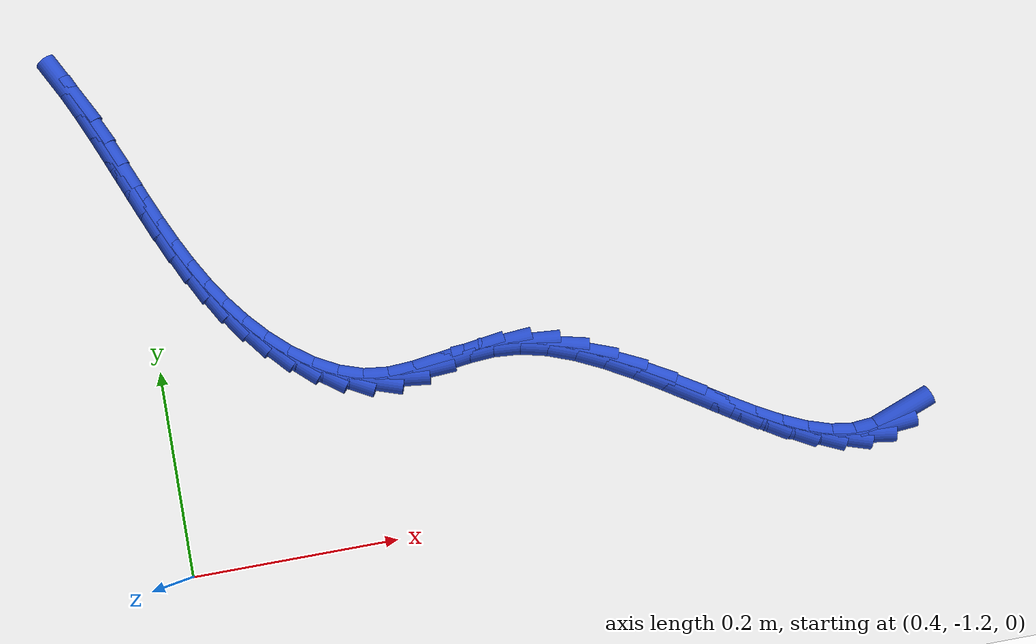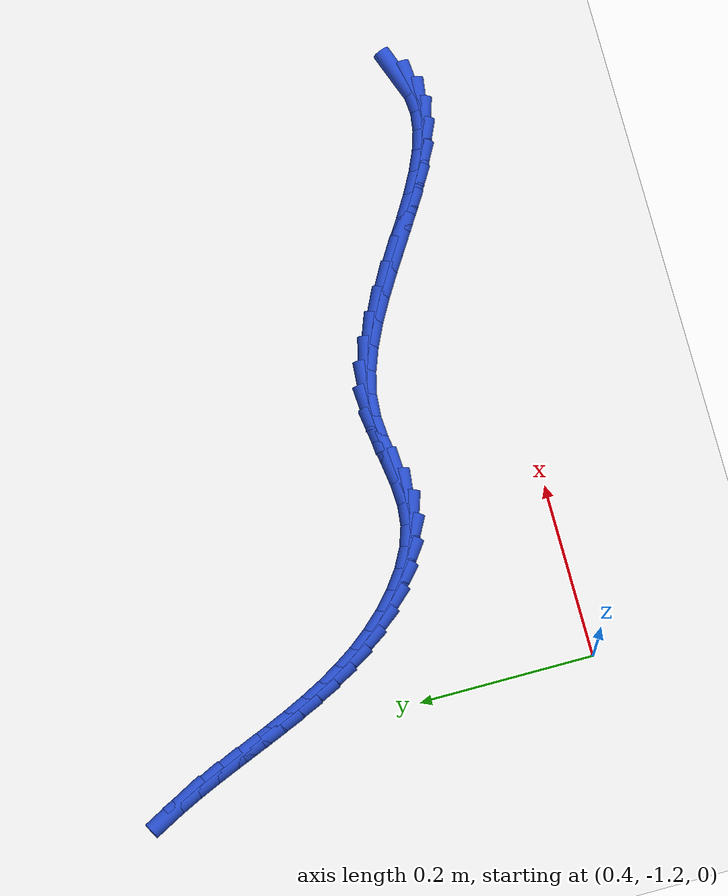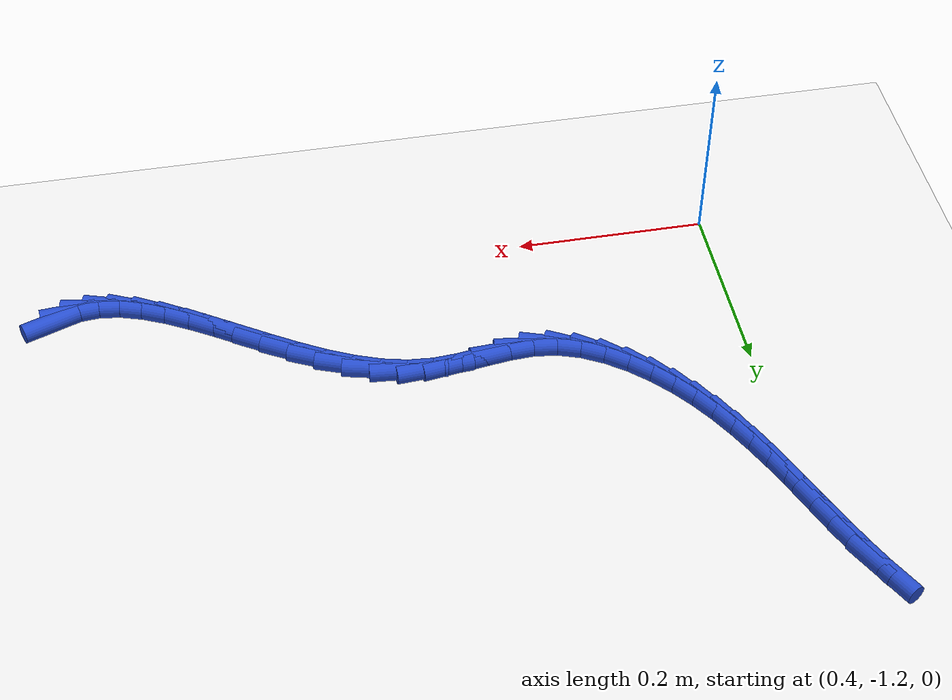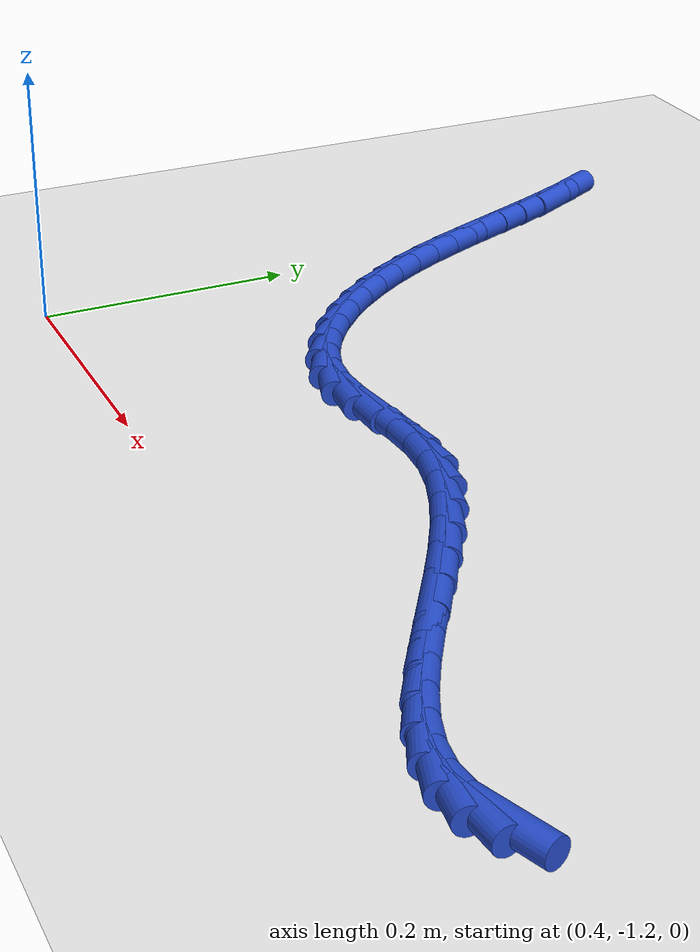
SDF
<sdf version="1.6">
 <world name="default">
  <model name="ground_plane">
   <static>1</static>
   <link name="link">
    <collision name="collision">
     <geometry><plane><normal>0 0 1</normal><size>100 100</size></plane></geometry>
     <surface><friction><ode><mu>100</mu><mu2>50</mu2></ode></friction></surface>
    </collision>
    <visual name="visual">
     <cast_shadows>0</cast_shadows>
     <geometry><plane><normal>0 0 1</normal><size>100 100</size></plane></geometry>
     <material>
      <script><uri>file://media/materials/scripts/gazebo.material</uri><name>Gazebo/WhiteGlow</name></script>
     </material>
    </visual>
   </link>
  </model>
  <model name="line">
   <link name="link_222">
    <pose>1.093503486780314 -1.1689613778271895 0.01 0 1.57 0.3533692593800649</pose>
    <collision name="collision">
     <geometry><cylinder><radius>0.01</radius><length>0.08</length></cylinder></geometry>
    </collision>
    <visual name="visual">
     <material>
      <script><name>Gazebo/Blue</name><uri>file://media/materials/scripts/gazebo.material</uri></script>
     </material>
     <geometry><cylinder><radius>0.01</radius><length>0.08</length></cylinder></geometry>
    </visual>
   </link>
   <link name="link_223">
    <pose>1.073049364685974 -1.1765059096031265 0.01 0 1.57 0.08449081167235765</pose>
    <collision name="collision">
     <geometry><cylinder><radius>0.01</radius><length>0.08</length></cylinder></geometry>
    </collision>
    <visual name="visual">
     <material>
      <script><name>Gazebo/Blue</name><uri>file://media/materials/scripts/gazebo.material</uri></script>
     </material>
     <geometry><cylinder><radius>0.01</radius><length>0.08</length></cylinder></geometry>
    </visual>
   </link>
   <link name="link_224">
    <pose>1.0516490963067209 -1.1783183505247665 0.01 0 1.57 -0.14020226964140325</pose>
    <collision name="collision">
     <geometry><cylinder><radius>0.01</radius><length>0.08</length></cylinder></geometry>
    </collision>
    <visual name="visual">
     <material>
      <script><name>Gazebo/Blue</name><uri>file://media/materials/scripts/gazebo.material</uri></script>
     </material>
     <geometry><cylinder><radius>0.01</radius><length>0.08</length></cylinder></geometry>
    </visual>
   </link>
   <link name="link_225">
    <pose>1.0293810906578573 -1.1751757072507096 0.01 0 1.57 -0.30743420362168145</pose>
    <collision name="collision">
     <geometry><cylinder><radius>0.01</radius><length>0.08</length></cylinder></geometry>
    </collision>
    <visual name="visual">
     <material>
      <script><name>Gazebo/Blue</name><uri>file://media/materials/scripts/gazebo.material</uri></script>
     </material>
     <geometry><cylinder><radius>0.01</radius><length>0.08</length></cylinder></geometry>
    </visual>
   </link>
   <link name="link_226">
    <pose>1.006323756754685 -1.1678549864395549 0.01 0 1.57 -0.4237659575485001</pose>
    <collision name="collision">
     <geometry><cylinder><radius>0.01</radius><length>0.08</length></cylinder></geometry>
    </collision>
    <visual name="visual">
     <material>
      <script><name>Gazebo/Blue</name><uri>file://media/materials/scripts/gazebo.material</uri></script>
     </material>
     <geometry><cylinder><radius>0.01</radius><length>0.08</length></cylinder></geometry>
    </visual>
   </link>
   <link name="link_227">
    <pose>0.9825555036125054 -1.1571331947499015 0.01 0 1.57 -0.5004940775723002</pose>
    <collision name="collision">
     <geometry><cylinder><radius>0.01</radius><length>0.08</length></cylinder></geometry>
    </collision>
    <visual name="visual">
     <material>
      <script><name>Gazebo/Blue</name><uri>file://media/materials/scripts/gazebo.material</uri></script>
     </material>
     <geometry><cylinder><radius>0.01</radius><length>0.08</length></cylinder></geometry>
    </visual>
   </link>
   <link name="link_228">
    <pose>0.9581547402466214 -1.1437873388403494 0.01 0 1.57 -0.5468764334390049</pose>
    <collision name="collision">
     <geometry><cylinder><radius>0.01</radius><length>0.08</length></cylinder></geometry>
    </collision>
    <visual name="visual">
     <material>
      <script><name>Gazebo/Blue</name><uri>file://media/materials/scripts/gazebo.material</uri></script>
     </material>
     <geometry><cylinder><radius>0.01</radius><length>0.08</length></cylinder></geometry>
    </visual>
   </link>
   <link name="link_229">
    <pose>0.9331998756723345 -1.1285944253694977 0.01 0 1.57 -0.5689618417782218</pose>
    <collision name="collision">
     <geometry><cylinder><radius>0.01</radius><length>0.08</length></cylinder></geometry>
    </collision>
    <visual name="visual">
     <material>
      <script><name>Gazebo/Blue</name><uri>file://media/materials/scripts/gazebo.material</uri></script>
     </material>
     <geometry><cylinder><radius>0.01</radius><length>0.08</length></cylinder></geometry>
    </visual>
   </link>
   <link name="link_230">
    <pose>0.9077693189049464 -1.1123314609959456 0.01 0 1.57 -0.57003225749628</pose>
    <collision name="collision">
     <geometry><cylinder><radius>0.01</radius><length>0.08</length></cylinder></geometry>
    </collision>
    <visual name="visual">
     <material>
      <script><name>Gazebo/Blue</name><uri>file://media/materials/scripts/gazebo.material</uri></script>
     </material>
     <geometry><cylinder><radius>0.01</radius><length>0.08</length></cylinder></geometry>
    </visual>
   </link>
   <link name="link_231">
    <pose>0.8819414789597599 -1.095775452378293 0.01 0 1.57 -0.5511488555832696</pose>
    <collision name="collision">
     <geometry><cylinder><radius>0.01</radius><length>0.08</length></cylinder></geometry>
    </collision>
    <visual name="visual">
     <material>
      <script><name>Gazebo/Blue</name><uri>file://media/materials/scripts/gazebo.material</uri></script>
     </material>
     <geometry><cylinder><radius>0.01</radius><length>0.08</length></cylinder></geometry>
    </visual>
   </link>
   <link name="link_232">
    <pose>0.8557947648520762 -1.0797034061751387 0.01 0 1.57 -0.5114760777028816</pose>
    <collision name="collision">
     <geometry><cylinder><radius>0.01</radius><length>0.08</length></cylinder></geometry>
    </collision>
    <visual name="visual">
     <material>
      <script><name>Gazebo/Blue</name><uri>file://media/materials/scripts/gazebo.material</uri></script>
     </material>
     <geometry><cylinder><radius>0.01</radius><length>0.08</length></cylinder></geometry>
    </visual>
   </link>
   <link name="link_233">
    <pose>0.8294075855971985 -1.0648923290450834 0.01 0 1.57 -0.44842169218633615</pose>
    <collision name="collision">
     <geometry><cylinder><radius>0.01</radius><length>0.08</length></cylinder></geometry>
    </collision>
    <visual name="visual">
     <material>
      <script><name>Gazebo/Blue</name><uri>file://media/materials/scripts/gazebo.material</uri></script>
     </material>
     <geometry><cylinder><radius>0.01</radius><length>0.08</length></cylinder></geometry>
    </visual>
   </link>
   <link name="link_234">
    <pose>0.802858350210427 -1.0521192276467244 0.01 0 1.57 -0.3578087131692635</pose>
    <collision name="collision">
     <geometry><cylinder><radius>0.01</radius><length>0.08</length></cylinder></geometry>
    </collision>
    <visual name="visual">
     <material>
      <script><name>Gazebo/Blue</name><uri>file://media/materials/scripts/gazebo.material</uri></script>
     </material>
     <geometry><cylinder><radius>0.01</radius><length>0.08</length></cylinder></geometry>
    </visual>
   </link>
   <link name="link_235">
    <pose>0.7762254677070644 -1.0421611086386622 0.01 0 1.57 -0.2345857040918105</pose>
    <collision name="collision">
     <geometry><cylinder><radius>0.01</radius><length>0.08</length></cylinder></geometry>
    </collision>
    <visual name="visual">
     <material>
      <script><name>Gazebo/Blue</name><uri>file://media/materials/scripts/gazebo.material</uri></script>
     </material>
     <geometry><cylinder><radius>0.01</radius><length>0.08</length></cylinder></geometry>
    </visual>
   </link>
   <link name="link_236">
    <pose>0.7495873471024128 -1.0357949786794964 0.01 0 1.57 -0.07629907367381815</pose>
    <collision name="collision">
     <geometry><cylinder><radius>0.01</radius><length>0.08</length></cylinder></geometry>
    </collision>
    <visual name="visual">
     <material>
      <script><name>Gazebo/Blue</name><uri>file://media/materials/scripts/gazebo.material</uri></script>
     </material>
     <geometry><cylinder><radius>0.01</radius><length>0.08</length></cylinder></geometry>
    </visual>
   </link>
   <link name="link_237">
    <pose>0.7230225370256854 -1.033764165922943 0.01 0 1.57 0.06964563453782</pose>
    <collision name="collision">
     <geometry><cylinder><radius>0.01</radius><length>0.08</length></cylinder></geometry>
    </collision>
    <visual name="visual">
     <material>
      <script><name>Gazebo/Blue</name><uri>file://media/materials/scripts/gazebo.material</uri></script>
     </material>
     <geometry><cylinder><radius>0.01</radius><length>0.08</length></cylinder></geometry>
    </visual>
   </link>
   <link name="link_238">
    <pose>0.6966145841349562 -1.0356063440262717 0.01 0 1.57 0.14215010283932777</pose>
    <collision name="collision">
     <geometry><cylinder><radius>0.01</radius><length>0.08</length></cylinder></geometry>
    </collision>
    <visual name="visual">
     <material>
      <script><name>Gazebo/Blue</name><uri>file://media/materials/scripts/gazebo.material</uri></script>
     </material>
     <geometry><cylinder><radius>0.01</radius><length>0.08</length></cylinder></geometry>
    </visual>
   </link>
   <link name="link_239">
    <pose>0.6704532896356323 -1.0393504272291 0.01 0 1.57 0.1377369634541507</pose>
    <collision name="collision">
     <geometry><cylinder><radius>0.01</radius><length>0.08</length></cylinder></geometry>
    </collision>
    <visual name="visual">
     <material>
      <script><name>Gazebo/Blue</name><uri>file://media/materials/scripts/gazebo.material</uri></script>
     </material>
     <geometry><cylinder><radius>0.01</radius><length>0.08</length></cylinder></geometry>
    </visual>
   </link>
   <link name="link_240">
    <pose>0.6446288496195001 -1.0429300729103934 0.01 0 1.57 0.05306054895958059</pose>
    <collision name="collision">
     <geometry><cylinder><radius>0.01</radius><length>0.08</length></cylinder></geometry>
    </collision>
    <visual name="visual">
     <material>
      <script><name>Gazebo/Blue</name><uri>file://media/materials/scripts/gazebo.material</uri></script>
     </material>
     <geometry><cylinder><radius>0.01</radius><length>0.08</length></cylinder></geometry>
    </visual>
   </link>
   <link name="link_241">
    <pose>0.6192314601783457 -1.044278938449116 0.01 0 1.57 -0.11719943928644568</pose>
    <collision name="collision">
     <geometry><cylinder><radius>0.01</radius><length>0.08</length></cylinder></geometry>
    </collision>
    <visual name="visual">
     <material>
      <script><name>Gazebo/Blue</name><uri>file://media/materials/scripts/gazebo.material</uri></script>
     </material>
     <geometry><cylinder><radius>0.01</radius><length>0.08</length></cylinder></geometry>
    </visual>
   </link>
   <link name="link_242">
    <pose>0.594352910328059 -1.0413497626241173 0.01 0 1.57 -0.3240312958091591</pose>
    <collision name="collision">
     <geometry><cylinder><radius>0.01</radius><length>0.08</length></cylinder></geometry>
    </collision>
    <visual name="visual">
     <material>
      <script><name>Gazebo/Blue</name><uri>file://media/materials/scripts/gazebo.material</uri></script>
     </material>
     <geometry><cylinder><radius>0.01</radius><length>0.08</length></cylinder></geometry>
    </visual>
   </link>
   <link name="link_243">
    <pose>0.5701797780125327 -1.0332307466233601 0.01 0 1.57 -0.4942414768002334</pose>
    <collision name="collision">
     <geometry><cylinder><radius>0.01</radius><length>0.08</length></cylinder></geometry>
    </collision>
    <visual name="visual">
     <material>
      <script><name>Gazebo/Blue</name><uri>file://media/materials/scripts/gazebo.material</uri></script>
     </material>
     <geometry><cylinder><radius>0.01</radius><length>0.08</length></cylinder></geometry>
    </visual>
   </link>
   <link name="link_244">
    <pose>0.5470451135418033 -1.0207646622290227 0.01 0 1.57 -0.6288402374956258</pose>
    <collision name="collision">
     <geometry><cylinder><radius>0.01</radius><length>0.08</length></cylinder></geometry>
    </collision>
    <visual name="visual">
     <material>
      <script><name>Gazebo/Blue</name><uri>file://media/materials/scripts/gazebo.material</uri></script>
     </material>
     <geometry><cylinder><radius>0.01</radius><length>0.08</length></cylinder></geometry>
    </visual>
   </link>
   <link name="link_245">
    <pose>0.5252945144961545 -1.0049445830992696 0.01 0 1.57 -0.7372719352020206</pose>
    <collision name="collision">
     <geometry><cylinder><radius>0.01</radius><length>0.08</length></cylinder></geometry>
    </collision>
    <visual name="visual">
     <material>
      <script><name>Gazebo/Blue</name><uri>file://media/materials/scripts/gazebo.material</uri></script>
     </material>
     <geometry><cylinder><radius>0.01</radius><length>0.08</length></cylinder></geometry>
    </visual>
   </link>
   <link name="link_246">
    <pose>0.5052735784558705 -0.9867635828922671 0.01 0 1.57 -0.8287221676463495</pose>
    <collision name="collision">
     <geometry><cylinder><radius>0.01</radius><length>0.08</length></cylinder></geometry>
    </collision>
    <visual name="visual">
     <material>
      <script><name>Gazebo/Blue</name><uri>file://media/materials/scripts/gazebo.material</uri></script>
     </material>
     <geometry><cylinder><radius>0.01</radius><length>0.08</length></cylinder></geometry>
    </visual>
   </link>
   <link name="link_247">
    <pose>0.4872520715587783 -0.9671087647076183 0.01 0 1.57 -0.9105103411282524</pose>
    <collision name="collision">
     <geometry><cylinder><radius>0.01</radius><length>0.08</length></cylinder></geometry>
    </collision>
    <visual name="visual">
     <material>
      <script><name>Gazebo/Blue</name><uri>file://media/materials/scripts/gazebo.material</uri></script>
     </material>
     <geometry><cylinder><radius>0.01</radius><length>0.08</length></cylinder></geometry>
    </visual>
   </link>
   <link name="link_248">
    <pose>0.47110682807341586 -0.9463181294741558 0.01 0 1.57 -0.9825227879142401</pose>
    <collision name="collision">
     <geometry><cylinder><radius>0.01</radius><length>0.08</length></cylinder></geometry>
    </collision>
    <visual name="visual">
     <material>
      <script><name>Gazebo/Blue</name><uri>file://media/materials/scripts/gazebo.material</uri></script>
     </material>
     <geometry><cylinder><radius>0.01</radius><length>0.08</length></cylinder></geometry>
    </visual>
   </link>
   <link name="link_249">
    <pose>0.45658779895048096 -0.9245523651799562 0.01 0 1.57 -1.0436777090136218</pose>
    <collision name="collision">
     <geometry><cylinder><radius>0.01</radius><length>0.08</length></cylinder></geometry>
    </collision>
    <visual name="visual">
     <material>
      <script><name>Gazebo/Blue</name><uri>file://media/materials/scripts/gazebo.material</uri></script>
     </material>
     <geometry><cylinder><radius>0.01</radius><length>0.08</length></cylinder></geometry>
    </visual>
   </link>
   <link name="link_250">
    <pose>0.4434448721865769 -0.9019720718379723 0.01 0 1.57 -1.0934769146845842</pose>
    <collision name="collision">
     <geometry><cylinder><radius>0.01</radius><length>0.08</length></cylinder></geometry>
    </collision>
    <visual name="visual">
     <material>
      <script><name>Gazebo/Blue</name><uri>file://media/materials/scripts/gazebo.material</uri></script>
     </material>
     <geometry><cylinder><radius>0.01</radius><length>0.08</length></cylinder></geometry>
    </visual>
   </link>
   <link name="link_251">
    <pose>0.43142793577830635 -0.8787378494611557 0.01 0 1.57 -1.1318114634620464</pose>
    <collision name="collision">
     <geometry><cylinder><radius>0.01</radius><length>0.08</length></cylinder></geometry>
    </collision>
    <visual name="visual">
     <material>
      <script><name>Gazebo/Blue</name><uri>file://media/materials/scripts/gazebo.material</uri></script>
     </material>
     <geometry><cylinder><radius>0.01</radius><length>0.08</length></cylinder></geometry>
    </visual>
   </link>
   <link name="link_252">
    <pose>0.4202868777222717 -0.8550102980624575 0.01 0 1.57 -1.1587725108783906</pose>
    <collision name="collision">
     <geometry><cylinder><radius>0.01</radius><length>0.08</length></cylinder></geometry>
    </collision>
    <visual name="visual">
     <material>
      <script><name>Gazebo/Blue</name><uri>file://media/materials/scripts/gazebo.material</uri></script>
     </material>
     <geometry><cylinder><radius>0.01</radius><length>0.08</length></cylinder></geometry>
    </visual>
   </link>
   <link name="link_253">
    <pose>0.40977158601507585 -0.8309500176548296 0.01 0 1.57 -1.1745011943922123</pose>
    <collision name="collision">
     <geometry><cylinder><radius>0.01</radius><length>0.08</length></cylinder></geometry>
    </collision>
    <visual name="visual">
     <material>
      <script><name>Gazebo/Blue</name><uri>file://media/materials/scripts/gazebo.material</uri></script>
     </material>
     <geometry><cylinder><radius>0.01</radius><length>0.08</length></cylinder></geometry>
    </visual>
   </link>
   <link name="link_254">
    <pose>0.3996319486533212 -0.8067176082512235 0.01 0 1.57 -1.1790860145692148</pose>
    <collision name="collision">
     <geometry><cylinder><radius>0.01</radius><length>0.08</length></cylinder></geometry>
    </collision>
    <visual name="visual">
     <material>
      <script><name>Gazebo/Blue</name><uri>file://media/materials/scripts/gazebo.material</uri></script>
     </material>
     <geometry><cylinder><radius>0.01</radius><length>0.08</length></cylinder></geometry>
    </visual>
   </link>
   <link name="link_255">
    <pose>0.3896178536336105 -0.7824736698645909 0.01 0 1.57 -1.1725045495084934</pose>
    <collision name="collision">
     <geometry><cylinder><radius>0.01</radius><length>0.08</length></cylinder></geometry>
    </collision>
    <visual name="visual">
     <material>
      <script><name>Gazebo/Blue</name><uri>file://media/materials/scripts/gazebo.material</uri></script>
     </material>
     <geometry><cylinder><radius>0.01</radius><length>0.08</length></cylinder></geometry>
    </visual>
   </link>
   <link name="link_256">
    <pose>0.3794791889525464 -0.7583788025078833 0.01 0 1.57 -1.154604900215478</pose>
    <collision name="collision">
     <geometry><cylinder><radius>0.01</radius><length>0.08</length></cylinder></geometry>
    </collision>
    <visual name="visual">
     <material>
      <script><name>Gazebo/Blue</name><uri>file://media/materials/scripts/gazebo.material</uri></script>
     </material>
     <geometry><cylinder><radius>0.01</radius><length>0.08</length></cylinder></geometry>
    </visual>
   </link>
   <link name="link_257">
    <pose>0.3689658426067314 -0.7345936061940521 0.01 0 1.57 -1.1251263784797345</pose>
    <collision name="collision">
     <geometry><cylinder><radius>0.01</radius><length>0.08</length></cylinder></geometry>
    </collision>
    <visual name="visual">
     <material>
      <script><name>Gazebo/Blue</name><uri>file://media/materials/scripts/gazebo.material</uri></script>
     </material>
     <geometry><cylinder><radius>0.01</radius><length>0.08</length></cylinder></geometry>
    </visual>
   </link>
   <link name="link_258">
    <pose>0.3578277025927681 -0.7112786809360491 0.01 0 1.57 -1.083764863216059</pose>
    <collision name="collision">
     <geometry><cylinder><radius>0.01</radius><length>0.08</length></cylinder></geometry>
    </collision>
    <visual name="visual">
     <material>
      <script><name>Gazebo/Blue</name><uri>file://media/materials/scripts/gazebo.material</uri></script>
     </material>
     <geometry><cylinder><radius>0.01</radius><length>0.08</length></cylinder></geometry>
    </visual>
   </link>
  </model>
 </world>
</sdf>
